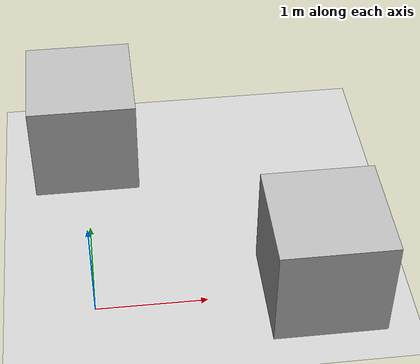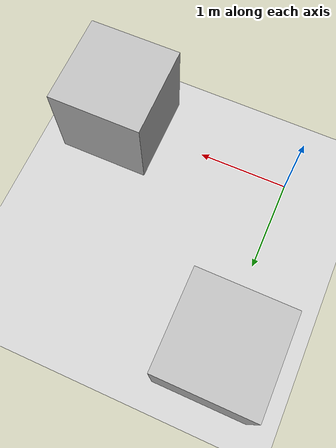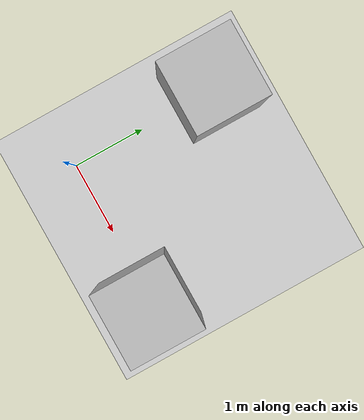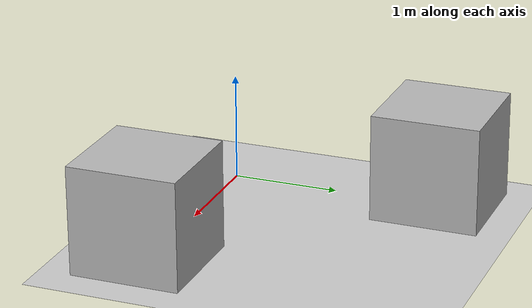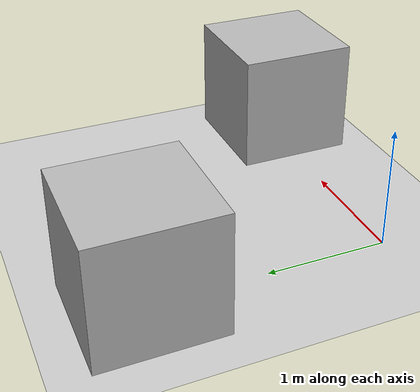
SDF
<?xml version="1.0" ?>
<sdf version="1.4">
  <!-- We use a custom world for the taurob tracker so that the camera angle is launched correctly -->

  <world name="default">
    <include>
      <uri>model://ground_plane</uri>
    </include>

    <!-- Global light source -->
    <include>
      <uri>model://sun</uri>
    </include>

    <!-- Focus camera on tall pendulum -->
    <gui fullscreen='0'>
      <camera name='user_camera'>
        <pose>4.927360 -4.376610 3.740080 0.000000 0.275643 2.356190</pose>
        <view_controller>orbit</view_controller>
      </camera>
    </gui>

    <!-- Simple geometries to test the lidar -->
    <model name="box_1">
      <pose>2.0 0.0 0.5  0.0 0.0 0.0</pose>
      <static>true</static>

      <link name="box_1_link">
        <visual name="box_1_visual">
          <geometry>
            <box>
              <size>1.0 1.0 1.0</size>
            </box>
          </geometry>
        </visual>

        <collision name="box_1_collision">
          <geometry>
            <box>
              <size>1.0 1.0 1.0</size>
            </box>
          </geometry>
        </collision>
      </link>
   </model>

   <model name="box_2">
      <pose>0.0 2.0 0.5  0.0 0.0 0.0</pose>
      <static>true</static>

      <link name="box_2_link">
        <visual name="box_2_visual">
          <geometry>
            <box>
              <size>1.0 1.0 1.0</size>
            </box>
          </geometry>
        </visual>

        <collision name="box_2_collision">
          <geometry>
            <box>
              <size>1.0 1.0 1.0</size>
            </box>
          </geometry>
        </collision>
      </link>
   </model>

  </world>
</sdf>
